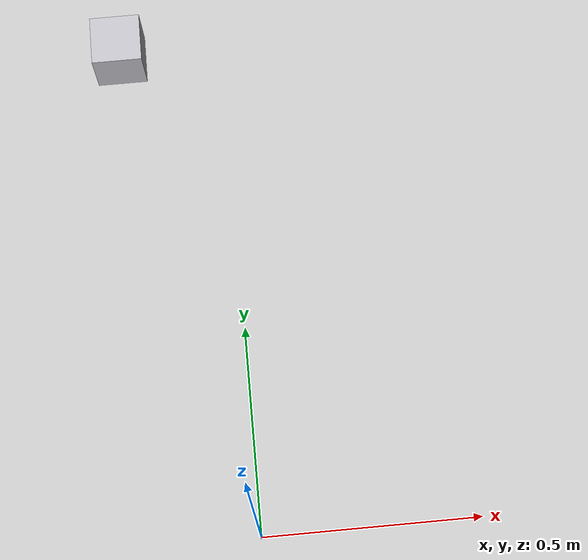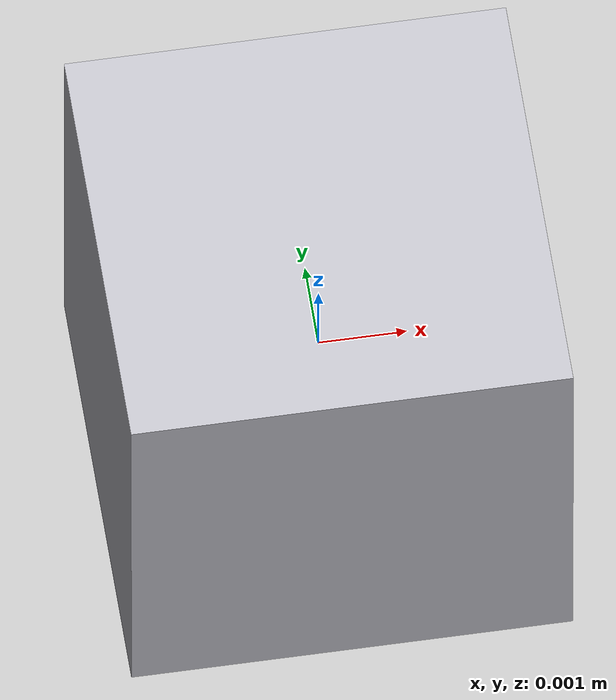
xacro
<?xml version="1.0" ?>
<robot name="ur5_assembly" xmlns:xacro="http://www.ros.org/wiki/xacro">

<!-- Namespace argument for multi-robot support -->
<xacro:arg name="robot_namespace" default="" />
<xacro:property name="robot_namespace" value="$(arg robot_namespace)" />

<link name="camera_base">
  <inertial>
    <origin xyz="0 0 0" rpy="0 0 0"/>
    <mass value="0.1"/>
    <inertia
        ixx="0.0001"
        iyy="0.0001"
        izz="0.0001"
        ixy="0.0"
        iyz="0.0"
        ixz="0.0"
    />
  </inertial>
  <visual>
    <origin xyz="0 0 0" rpy="0 0 0"/>
    <geometry>
      <box size="0.005 0.005 0.005"/>
    </geometry>
    <material name="silver"/>
  </visual>
  <collision>
    <origin xyz="0 0 0" rpy="0 0 0"/>
    <geometry>
      <box size="0.005 0.005 0.005"/>
    </geometry>
  </collision>
</link>

<!-- Camera Link -->
<link name="camera_frame">
  <inertial>
    <origin xyz="0 0 0" rpy="0 0 0"/>
    <mass value="0.1"/>
    <inertia
        ixx="0.0001"
        iyy="0.0001"
        izz="0.0001"
        ixy="0.0"
        iyz="0.0"
        ixz="0.0"
    />
  </inertial>
  <visual>
    <origin xyz="0 0 0" rpy="0 0 0"/>
    <geometry>
      <box size="0.05 0.05 0.05"/>
    </geometry>
    <material name="silver"/>
  </visual>
  <collision>
    <origin xyz="0 0 0" rpy="0 0 0"/>
    <geometry>
      <box size="0.05 0.05 0.05"/>
    </geometry>
  </collision>
</link>

<!-- Camera Joint -->
<joint name="base_camera_joint" type="fixed">
  <origin xyz="0 0 2.3" rpy="0 1.57 0"/>
  <parent link="camera_base"/>
  <child link="camera_frame"/>
</joint>

<gazebo reference="camera_frame">
  <sensor name="camera" type="camera">
    <ignition_frame_id>${robot_namespace}/camera_frame</ignition_frame_id>
    <optical_frame_id>${robot_namespace}/camera_frame</optical_frame_id>
    <camera>
      <horizontal_fov>1.085595</horizontal_fov>
      <image>
        <width>1920</width>
        <height>1080</height>
        <format>RGB_INT8</format>
      </image>
      <camera_info_topic>${robot_namespace}/camera/camera_info</camera_info_topic>
      <clip>
        <near>0.1</near>
        <far>10</far>
      </clip>
    <distortion>
        <k1>0.096559</k1>
        <k2>-0.237840</k2>
        <k3>0.113659</k3>
        <p1>0.000396</p1>
        <p2>0.000247</p2>
        <center>0.5 0.5</center>
      </distortion>
    </camera>
    <always_on>1</always_on>
    <update_rate>10</update_rate>
    <visualize>false</visualize>
    <topic>${robot_namespace}/camera/image_raw</topic>
    <enable_metrics>true</enable_metrics>
  </sensor>
</gazebo>

<link name="depth_frame">
</link>

<joint name="camera_depth_joint" type="fixed">
  <origin xyz="0 0 0" rpy="0 0 0"/>
  <parent link="camera_frame"/>
  <child link="depth_frame"/>
</joint>

<link name="optical_frame">
</link>

<joint name="camera_optical_joint" type="fixed">
  <origin xyz="0 0 0" rpy="-1.57 0 -1.57"/>
  <parent link="depth_frame"/>
  <child link="optical_frame"/>
</joint>

<gazebo reference="depth_frame">
  <sensor name="rgbd_camera" type="rgbd_camera">
    <ignition_frame_id>${robot_namespace}/depth_frame</ignition_frame_id>
    <camera name="rgbd_camera_frame">
      <horizontal_fov>1.3962634</horizontal_fov>
      <lens>
        <intrinsics>
          <fx>762.7</fx>
          <fy>762.7</fy>
          <cx>640.0</cx>
          <cy>360.0</cy>
          <s>0</s>
        </intrinsics>
      </lens>
      <distortion>
        <k1>0.104207</k1>
        <k2>-0.255558</k2>
        <k3>0.128694</k3>
        <p1>0.000512</p1>
        <p2>0.000319</p2>
        <center>0.5 0.5</center>
      </distortion>
      <image>
        <width>1280</width>
        <height>720</height>
        <format>L8</format>
      </image>
      <clip>
        <near>0.01</near>
        <far>300</far>
      </clip>
      <depth_camera>
        <clip>
          <near>0.1</near>
          <far>10</far>
        </clip>
      </depth_camera>
      <noise>
        <type>gaussian</type>
        <mean>0</mean>
        <stddev>0.003</stddev>
      </noise>
    </camera>
    <always_on>1</always_on>
    <update_rate>10</update_rate>
    <visualize>0</visualize>
    <topic>${robot_namespace}/depth_camera</topic>
  </sensor>
</gazebo>
</robot>
